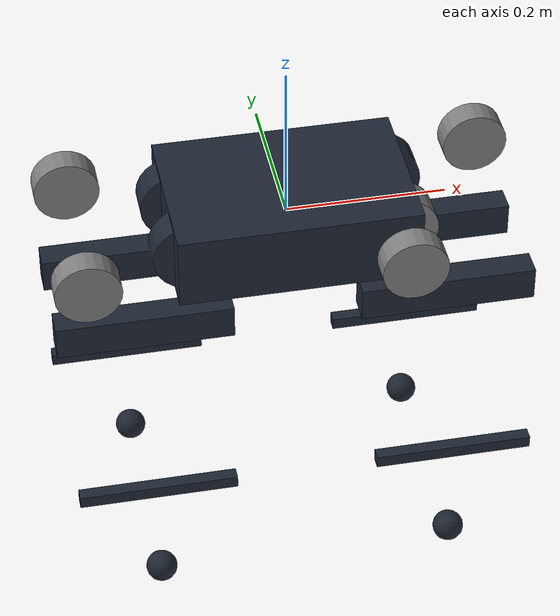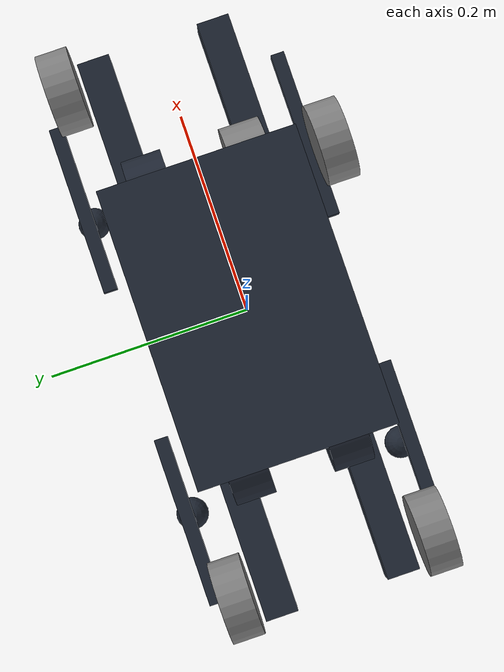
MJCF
<mujoco model="legs">
    <compiler angle="radian" />
    <size njmax="500" nconmax="100" />
    <worldbody>
        <geom size="0.15 0.1 0.0465" type="box" rgba="0.12 0.15 0.2 1" />
        <geom size="0.0005 0.0005 0.0005" type="box" rgba="0.8 0 0 1" />
        <body name="FR_hip" pos="0.13 -0.05 0">
            <inertial pos="-0.00266413 -0.0163358 2.49436e-05" quat="0.475134 0.521822 -0.477036 0.523818" mass="0.864993" diaginertia="0.00151807 0.00143717 0.000946744" />
            <joint name="FR_hip_joint" pos="0 0 0" axis="1 0 0" limited="true" range="-0.802851 0.802851" />
            <geom size="0.046 0.02" quat="0.707107 0.707107 0 0" type="cylinder" />
            <geom size="0.041 0.016" pos="0 -0.081 0" quat="0.707107 0.707107 0 0" type="cylinder" />
            <body name="FR_thigh" pos="0.06 -0.015 0">
                <inertial pos="-0.003237 0.022327 -0.027326" quat="0.999125 -0.00256393 -0.0409531 -0.00806091" mass="1.013" diaginertia="0.00555739 0.00513936 0.00133944" />
                <joint name="FR_thigh_joint" pos="0 0 0" axis="0 1 0" limited="true" range="-1.0472 4.18879" />
                <geom size="0.0215 0.017 0.11" pos="0 0 -0.1" quat="0.707107 0 0.707107 0" type="box" rgba="0.12 0.15 0.2 1" />
                <body name="FR_calf" pos="0 -0.07125 -0.21183">
                    <inertial pos="0.00472659 0 -0.142595" quat="0.706906 0.0168526 0.0168526 0.706906" mass="0.226" diaginertia="0.00380047 0.00379113 3.53223e-05" />
                    <joint name="FR_calf_joint" pos="0 0 0" axis="0 1 0" limited="true" range="-2.69653 -0.916298" />
                    <geom size="0.008 0.008 0.1" pos="0 0 -0.1" quat="0.707107 0 0.707107 0" type="box" rgba="0.12 0.15 0.2 1" />
                    <geom size="0.02" pos="0 0 -0.24" rgba="0.12 0.15 0.2 1" />
                </body>
            </body>
        </body>
        <body name="FL_hip" pos="0.13 0.05 0">
            <inertial pos="0.0227338 0.0102794 2.49436e-05" quat="0.415693 0.415059 0.572494 0.571993" mass="0.864993" diaginertia="0.00366077 0.00338628 0.000591358" />
            <joint name="FL_hip_joint" pos="0 0 0" axis="1 0 0" limited="true" range="-0.802851 0.802851" />
            <geom size="0.046 0.02" quat="0.707107 0.707107 0 0" type="cylinder" rgba="0.12 0.15 0.2 1" />
            <geom size="0.041 0.016" pos="0.13 0.05 0" quat="0.707107 0.707107 0 0" type="cylinder" />
            <body name="FL_thigh" pos="0.06 0.015 0">
                <inertial pos="-0.003237 -0.022327 -0.027326" quat="0.999125 0.00256393 -0.0409531 0.00806091" mass="1.013" diaginertia="0.00555739 0.00513936 0.00133944" />
                <joint name="FL_thigh_joint" pos="0 0 0" axis="0 1 0" limited="true" range="-1.0472 4.18879" />
                <geom size="0.0215 0.017 0.11" pos="0 0 -0.1" quat="0.707107 0 0.707107 0" type="box" rgba="0.12 0.15 0.2 1" />
                <body name="FL_calf" pos="0 0.07125 -0.21183">
                    <inertial pos="0.00472659 0 -0.142595" quat="0.706906 0.0168526 0.0168526 0.706906" mass="0.226" diaginertia="0.00380047 0.00379113 3.53223e-05" />
                    <joint name="FL_calf_joint" pos="0 0 0" axis="0 1 0" limited="true" range="-2.69653 -0.916298" />
                    <geom size="0.008 0.008 0.1" pos="0 0 -0.1" quat="0.707107 0 0.707107 0" type="box" rgba="0.12 0.15 0.2 1" />
                    <geom size="0.02" pos="0 0 -0.24" rgba="0.12 0.15 0.2 1" />
                </body>
            </body>
        </body>
        <body name="RR_hip" pos="-0.13 -0.05 0">
            <inertial pos="-0.0227338 -0.0102794 2.49436e-05" quat="0.415059 0.415693 0.571993 0.572494" mass="0.864993" diaginertia="0.00366077 0.00338628 0.000591358" />
            <joint name="RR_hip_joint" pos="0 0 0" axis="1 0 0" limited="true" range="-0.802851 0.802851" />
            <geom size="0.046 0.02" quat="0.707107 0.707107 0 0" type="cylinder" rgba="0.12 0.15 0.2 1" />
            <geom size="0.041 0.016" pos="-0.13 -0.05 0" quat="0.707107 0.707107 0 0" type="cylinder" />
            <body name="RR_thigh" pos="-0.06 -0.015 0">
                <inertial pos="-0.003237 0.022327 -0.027326" quat="0.999125 -0.00256393 -0.0409531 -0.00806091" mass="1.013" diaginertia="0.00555739 0.00513936 0.00133944" />
                <joint name="RR_thigh_joint" pos="0 0 0" axis="0 1 0" limited="true" range="-1.0472 4.18879" />
                <geom size="0.0215 0.017 0.11" pos="0 0 -0.1" quat="0.707107 0 0.707107 0" type="box" rgba="0.12 0.15 0.2 1" />
                <body name="RR_calf" pos="0 -0.07125 -0.21183">
                    <inertial pos="0.00472659 0 -0.142595" quat="0.706906 0.0168526 0.0168526 0.706906" mass="0.226" diaginertia="0.00380047 0.00379113 3.53223e-05" />
                    <joint name="RR_calf_joint" pos="0 0 0" axis="0 1 0" limited="true" range="-2.69653 -0.916298" />
                    <geom size="0.008 0.008 0.1" pos="0 0 -0.1" quat="0.707107 0 0.707107 0" type="box" rgba="0.12 0.15 0.2 1" />
                    <geom size="0.02" pos="0 0 -0.24" rgba="0.12 0.15 0.2 1" />
                </body>
            </body>
        </body>
        <body name="RL_hip" pos="-0.13 0.05 0">
            <inertial pos="-0.0227338 0.0102794 2.49436e-05" quat="0.572494 0.571993 0.415693 0.415059" mass="0.864993" diaginertia="0.00366077 0.00338628 0.000591358" />
            <joint name="RL_hip_joint" pos="0 0 0" axis="1 0 0" limited="true" range="-0.802851 0.802851" />
            <geom size="0.046 0.02" quat="0.707107 0.707107 0 0" type="cylinder" rgba="0.12 0.15 0.2 1" />
            <geom size="0.041 0.016" pos="-0.13 0.05 0" quat="0.707107 0.707107 0 0" type="cylinder" />
            <body name="RL_thigh" pos="-0.06 0.015 0">
                <inertial pos="-0.003237 -0.022327 -0.027326" quat="0.999125 0.00256393 -0.0409531 0.00806091" mass="1.013" diaginertia="0.00555739 0.00513936 0.00133944" />
                <joint name="RL_thigh_joint" pos="0 0 0" axis="0 1 0" limited="true" range="-1.0472 4.18879" />
                <geom size="0.0215 0.017 0.11" pos="0 0 -0.1" quat="0.707107 0 0.707107 0" type="box" rgba="0.12 0.15 0.2 1" />
                <body name="RL_calf" pos="0 0.07125 -0.21183">
                    <inertial pos="0.00472659 0 -0.142595" quat="0.706906 0.0168526 0.0168526 0.706906" mass="0.226" diaginertia="0.00380047 0.00379113 3.53223e-05" />
                    <joint name="RL_calf_joint" pos="0 0 0" axis="0 1 0" limited="true" range="-2.69653 -0.916298" />
                    <geom size="0.008 0.008 0.1" pos="0 0 -0.1" quat="0.707107 0 0.707107 0" type="box" rgba="0.12 0.15 0.2 1" />
                    <geom size="0.02" pos="0 0 -0.24" rgba="0.12 0.15 0.2 1" />
                </body>
            </body>
        </body>
    </worldbody>
</mujoco>
